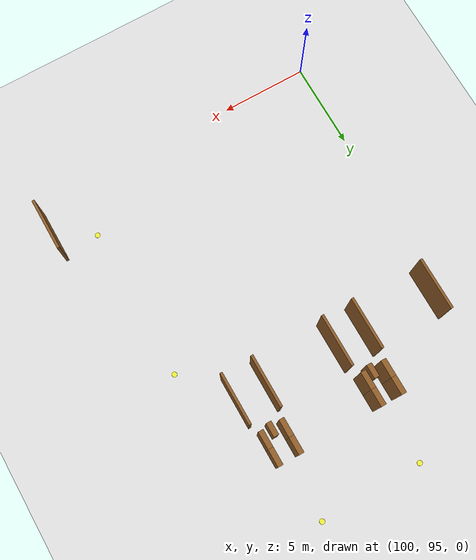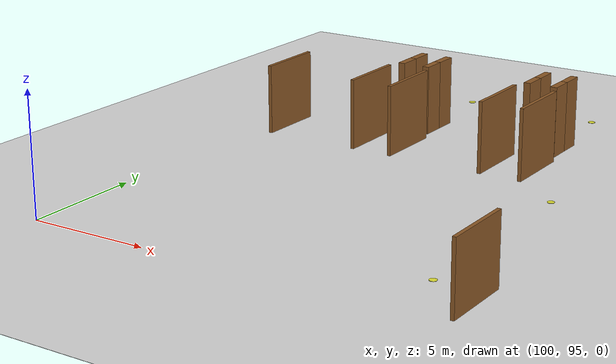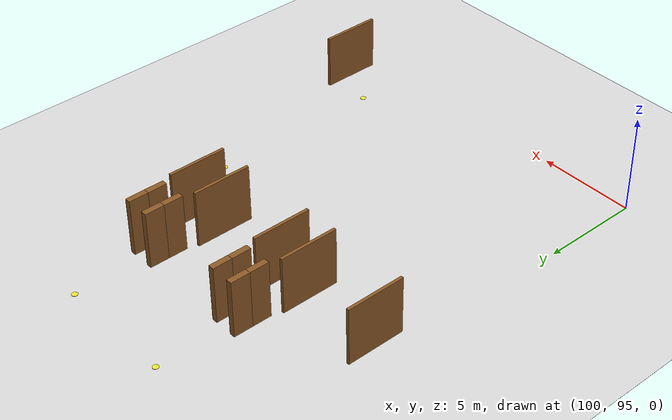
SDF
<sdf version="1.9">
 <world name="realistic_warehouse_150x200m">
  <model name="ground_plane">
   <static>true</static>
   <pose>68.5 102.0 0 0 0 0</pose>
   <link name="ground_link">
    <visual name="ground_visual">
     <geometry><box><size>127.0 194.0 0.01</size></box></geometry>
     <material><ambient>0.85 0.85 0.85 1.0</ambient><diffuse>0.85 0.85 0.85 1.0</diffuse></material>
    </visual>
    <collision name="ground_visual_collision">
     <geometry><box><size>127.0 194.0 0.01</size></box></geometry>
    </collision>
    <collision name="ground_collision">
     <geometry><plane><normal>0 0 1</normal><size>127.0 194.0</size></plane></geometry>
    </collision>
   </link>
  </model>
  <model name="cross_Zone_F_entry_890">
   <static>true</static>
   <pose>115.0 107.0 0.01 0 0 0</pose>
   <link name="cross_Zone_F_entry_890_link">
    <visual name="cross_Zone_F_entry_890_vis">
     <geometry><cylinder><radius>0.15</radius><length>0.02</length></cylinder></geometry>
     <material><ambient>0.9 0.9 0.2 1.0</ambient><diffuse>0.9 0.9 0.2 1.0</diffuse></material>
    </visual>
    <collision name="cross_Zone_F_entry_890_vis_collision">
     <geometry><cylinder><radius>0.15</radius><length>0.02</length></cylinder></geometry>
    </collision>
   </link>
  </model>
  <model name="aisle_R_Zone_F_A0_entry_892">
   <static>true</static>
   <pose>100.9 110.0 1.5 0 0 0</pose>
   <link name="aisle_R_Zone_F_A0_entry_892_link">
    <visual name="aisle_R_Zone_F_A0_entry_892_vis">
     <geometry><box><size>0.15 3.0 3.0</size></box></geometry>
     <material><ambient>0.55 0.35 0.15 1.0</ambient><diffuse>0.55 0.35 0.15 1.0</diffuse></material>
    </visual>
    <collision name="aisle_R_Zone_F_A0_entry_892_vis_collision">
     <geometry><box><size>0.15 3.0 3.0</size></box></geometry>
    </collision>
   </link>
  </model>
  <model name="aisle_L_Zone_F_A1_entry_911">
   <static>true</static>
   <pose>105.1 110.0 1.5 0 0 0</pose>
   <link name="aisle_L_Zone_F_A1_entry_911_link">
    <visual name="aisle_L_Zone_F_A1_entry_911_vis">
     <geometry><box><size>0.15 3.0 3.0</size></box></geometry>
     <material><ambient>0.55 0.35 0.15 1.0</ambient><diffuse>0.55 0.35 0.15 1.0</diffuse></material>
    </visual>
    <collision name="aisle_L_Zone_F_A1_entry_911_vis_collision">
     <geometry><box><size>0.15 3.0 3.0</size></box></geometry>
    </collision>
   </link>
  </model>
  <model name="aisle_R_Zone_F_A1_entry_912">
   <static>true</static>
   <pose>106.9 110.0 1.5 0 0 0</pose>
   <link name="aisle_R_Zone_F_A1_entry_912_link">
    <visual name="aisle_R_Zone_F_A1_entry_912_vis">
     <geometry><box><size>0.15 3.0 3.0</size></box></geometry>
     <material><ambient>0.55 0.35 0.15 1.0</ambient><diffuse>0.55 0.35 0.15 1.0</diffuse></material>
    </visual>
    <collision name="aisle_R_Zone_F_A1_entry_912_vis_collision">
     <geometry><box><size>0.15 3.0 3.0</size></box></geometry>
    </collision>
   </link>
  </model>
  <model name="rack_Zone_F_A1_S0_913">
   <static>true</static>
   <pose>105.4 112.5 1.5 0 0 0</pose>
   <link name="rack_Zone_F_A1_S0_913_link">
    <visual name="rack_Zone_F_A1_S0_913_vis">
     <geometry><box><size>0.3 1.0 3.0</size></box></geometry>
     <material><ambient>0.55 0.35 0.15 1.0</ambient><diffuse>0.55 0.35 0.15 1.0</diffuse></material>
    </visual>
    <collision name="rack_Zone_F_A1_S0_913_vis_collision">
     <geometry><box><size>0.3 1.0 3.0</size></box></geometry>
    </collision>
   </link>
  </model>
  <model name="rack_Zone_F_A1_S0_914">
   <static>true</static>
   <pose>105.4 113.5 1.5 0 0 0</pose>
   <link name="rack_Zone_F_A1_S0_914_link">
    <visual name="rack_Zone_F_A1_S0_914_vis">
     <geometry><box><size>0.3 1.0 3.0</size></box></geometry>
     <material><ambient>0.55 0.35 0.15 1.0</ambient><diffuse>0.55 0.35 0.15 1.0</diffuse></material>
    </visual>
    <collision name="rack_Zone_F_A1_S0_914_vis_collision">
     <geometry><box><size>0.3 1.0 3.0</size></box></geometry>
    </collision>
   </link>
  </model>
  <model name="rack_Zone_F_A1_S0_915">
   <static>true</static>
   <pose>106.6 112.5 1.5 0 0 0</pose>
   <link name="rack_Zone_F_A1_S0_915_link">
    <visual name="rack_Zone_F_A1_S0_915_vis">
     <geometry><box><size>0.3 1.0 3.0</size></box></geometry>
     <material><ambient>0.55 0.35 0.15 1.0</ambient><diffuse>0.55 0.35 0.15 1.0</diffuse></material>
    </visual>
    <collision name="rack_Zone_F_A1_S0_915_vis_collision">
     <geometry><box><size>0.3 1.0 3.0</size></box></geometry>
    </collision>
   </link>
  </model>
  <model name="rack_Zone_F_A1_S0_916">
   <static>true</static>
   <pose>106.6 113.5 1.5 0 0 0</pose>
   <link name="rack_Zone_F_A1_S0_916_link">
    <visual name="rack_Zone_F_A1_S0_916_vis">
     <geometry><box><size>0.3 1.0 3.0</size></box></geometry>
     <material><ambient>0.55 0.35 0.15 1.0</ambient><diffuse>0.55 0.35 0.15 1.0</diffuse></material>
    </visual>
    <collision name="rack_Zone_F_A1_S0_916_vis_collision">
     <geometry><box><size>0.3 1.0 3.0</size></box></geometry>
    </collision>
   </link>
  </model>
  <model name="rack_Zone_F_A1_S0_917">
   <static>true</static>
   <pose>106.0 112.2 1.125 0 0 0</pose>
   <link name="rack_Zone_F_A1_S0_917_link">
    <visual name="rack_Zone_F_A1_S0_917_vis">
     <geometry><box><size>0.3 0.8 2.25</size></box></geometry>
     <material><ambient>0.55 0.35 0.15 1.0</ambient><diffuse>0.55 0.35 0.15 1.0</diffuse></material>
    </visual>
    <collision name="rack_Zone_F_A1_S0_917_vis_collision">
     <geometry><box><size>0.3 0.8 2.25</size></box></geometry>
    </collision>
   </link>
  </model>
  <model name="cross_Zone_F_A1_S1_918">
   <static>true</static>
   <pose>106.0 117.5 0.01 0 0 0</pose>
   <link name="cross_Zone_F_A1_S1_918_link">
    <visual name="cross_Zone_F_A1_S1_918_vis">
     <geometry><cylinder><radius>0.15</radius><length>0.02</length></cylinder></geometry>
     <material><ambient>0.9 0.9 0.2 1.0</ambient><diffuse>0.9 0.9 0.2 1.0</diffuse></material>
    </visual>
    <collision name="cross_Zone_F_A1_S1_918_vis_collision">
     <geometry><cylinder><radius>0.15</radius><length>0.02</length></cylinder></geometry>
    </collision>
   </link>
  </model>
  <model name="aisle_L_Zone_F_A2_entry_931">
   <static>true</static>
   <pose>111.1 110.0 1.5 0 0 0</pose>
   <link name="aisle_L_Zone_F_A2_entry_931_link">
    <visual name="aisle_L_Zone_F_A2_entry_931_vis">
     <geometry><box><size>0.15 3.0 3.0</size></box></geometry>
     <material><ambient>0.55 0.35 0.15 1.0</ambient><diffuse>0.55 0.35 0.15 1.0</diffuse></material>
    </visual>
    <collision name="aisle_L_Zone_F_A2_entry_931_vis_collision">
     <geometry><box><size>0.15 3.0 3.0</size></box></geometry>
    </collision>
   </link>
  </model>
  <model name="aisle_R_Zone_F_A2_entry_932">
   <static>true</static>
   <pose>112.9 110.0 1.5 0 0 0</pose>
   <link name="aisle_R_Zone_F_A2_entry_932_link">
    <visual name="aisle_R_Zone_F_A2_entry_932_vis">
     <geometry><box><size>0.15 3.0 3.0</size></box></geometry>
     <material><ambient>0.55 0.35 0.15 1.0</ambient><diffuse>0.55 0.35 0.15 1.0</diffuse></material>
    </visual>
    <collision name="aisle_R_Zone_F_A2_entry_932_vis_collision">
     <geometry><box><size>0.15 3.0 3.0</size></box></geometry>
    </collision>
   </link>
  </model>
  <model name="rack_Zone_F_A2_S0_933">
   <static>true</static>
   <pose>111.4 112.5 1.5 0 0 0</pose>
   <link name="rack_Zone_F_A2_S0_933_link">
    <visual name="rack_Zone_F_A2_S0_933_vis">
     <geometry><box><size>0.3 1.0 3.0</size></box></geometry>
     <material><ambient>0.55 0.35 0.15 1.0</ambient><diffuse>0.55 0.35 0.15 1.0</diffuse></material>
    </visual>
    <collision name="rack_Zone_F_A2_S0_933_vis_collision">
     <geometry><box><size>0.3 1.0 3.0</size></box></geometry>
    </collision>
   </link>
  </model>
  <model name="rack_Zone_F_A2_S0_934">
   <static>true</static>
   <pose>111.4 113.5 1.5 0 0 0</pose>
   <link name="rack_Zone_F_A2_S0_934_link">
    <visual name="rack_Zone_F_A2_S0_934_vis">
     <geometry><box><size>0.3 1.0 3.0</size></box></geometry>
     <material><ambient>0.55 0.35 0.15 1.0</ambient><diffuse>0.55 0.35 0.15 1.0</diffuse></material>
    </visual>
    <collision name="rack_Zone_F_A2_S0_934_vis_collision">
     <geometry><box><size>0.3 1.0 3.0</size></box></geometry>
    </collision>
   </link>
  </model>
  <model name="rack_Zone_F_A2_S0_935">
   <static>true</static>
   <pose>112.6 112.5 1.5 0 0 0</pose>
   <link name="rack_Zone_F_A2_S0_935_link">
    <visual name="rack_Zone_F_A2_S0_935_vis">
     <geometry><box><size>0.3 1.0 3.0</size></box></geometry>
     <material><ambient>0.55 0.35 0.15 1.0</ambient><diffuse>0.55 0.35 0.15 1.0</diffuse></material>
    </visual>
    <collision name="rack_Zone_F_A2_S0_935_vis_collision">
     <geometry><box><size>0.3 1.0 3.0</size></box></geometry>
    </collision>
   </link>
  </model>
  <model name="rack_Zone_F_A2_S0_936">
   <static>true</static>
   <pose>112.6 113.5 1.5 0 0 0</pose>
   <link name="rack_Zone_F_A2_S0_936_link">
    <visual name="rack_Zone_F_A2_S0_936_vis">
     <geometry><box><size>0.3 1.0 3.0</size></box></geometry>
     <material><ambient>0.55 0.35 0.15 1.0</ambient><diffuse>0.55 0.35 0.15 1.0</diffuse></material>
    </visual>
    <collision name="rack_Zone_F_A2_S0_936_vis_collision">
     <geometry><box><size>0.3 1.0 3.0</size></box></geometry>
    </collision>
   </link>
  </model>
  <model name="rack_Zone_F_A2_S0_937">
   <static>true</static>
   <pose>112.0 112.2 1.125 0 0 0</pose>
   <link name="rack_Zone_F_A2_S0_937_link">
    <visual name="rack_Zone_F_A2_S0_937_vis">
     <geometry><box><size>0.3 0.8 2.25</size></box></geometry>
     <material><ambient>0.55 0.35 0.15 1.0</ambient><diffuse>0.55 0.35 0.15 1.0</diffuse></material>
    </visual>
    <collision name="rack_Zone_F_A2_S0_937_vis_collision">
     <geometry><box><size>0.3 0.8 2.25</size></box></geometry>
    </collision>
   </link>
  </model>
  <model name="cross_Zone_F_A2_S1_938">
   <static>true</static>
   <pose>112.0 117.5 0.01 0 0 0</pose>
   <link name="cross_Zone_F_A2_S1_938_link">
    <visual name="cross_Zone_F_A2_S1_938_vis">
     <geometry><cylinder><radius>0.15</radius><length>0.02</length></cylinder></geometry>
     <material><ambient>0.9 0.9 0.2 1.0</ambient><diffuse>0.9 0.9 0.2 1.0</diffuse></material>
    </visual>
    <collision name="cross_Zone_F_A2_S1_938_vis_collision">
     <geometry><cylinder><radius>0.15</radius><length>0.02</length></cylinder></geometry>
    </collision>
   </link>
  </model>
  <model name="aisle_L_Zone_I_A3_exit_1524">
   <static>true</static>
   <pose>117.1 97.0 1.4 0 0 0</pose>
   <link name="aisle_L_Zone_I_A3_exit_1524_link">
    <visual name="aisle_L_Zone_I_A3_exit_1524_vis">
     <geometry><box><size>0.15 3.0 2.8</size></box></geometry>
     <material><ambient>0.55 0.35 0.15 1.0</ambient><diffuse>0.55 0.35 0.15 1.0</diffuse></material>
    </visual>
    <collision name="aisle_L_Zone_I_A3_exit_1524_vis_collision">
     <geometry><box><size>0.15 3.0 2.8</size></box></geometry>
    </collision>
   </link>
  </model>
  <model name="cross_Zone_I_corridor_N_1626">
   <static>true</static>
   <pose>115.0 98.0 0.01 0 0 0</pose>
   <link name="cross_Zone_I_corridor_N_1626_link">
    <visual name="cross_Zone_I_corridor_N_1626_vis">
     <geometry><cylinder><radius>0.15</radius><length>0.02</length></cylinder></geometry>
     <material><ambient>0.9 0.9 0.2 1.0</ambient><diffuse>0.9 0.9 0.2 1.0</diffuse></material>
    </visual>
    <collision name="cross_Zone_I_corridor_N_1626_vis_collision">
     <geometry><cylinder><radius>0.15</radius><length>0.02</length></cylinder></geometry>
    </collision>
   </link>
  </model>
  <model name="cross_Zone_F_corridor_S_1627">
   <static>true</static>
   <pose>115.0 107.0 0.01 0 0 0</pose>
   <link name="cross_Zone_F_corridor_S_1627_link">
    <visual name="cross_Zone_F_corridor_S_1627_vis">
     <geometry><cylinder><radius>0.15</radius><length>0.02</length></cylinder></geometry>
     <material><ambient>0.9 0.9 0.2 1.0</ambient><diffuse>0.9 0.9 0.2 1.0</diffuse></material>
    </visual>
    <collision name="cross_Zone_F_corridor_S_1627_vis_collision">
     <geometry><cylinder><radius>0.15</radius><length>0.02</length></cylinder></geometry>
    </collision>
   </link>
  </model>
 </world>
</sdf>
